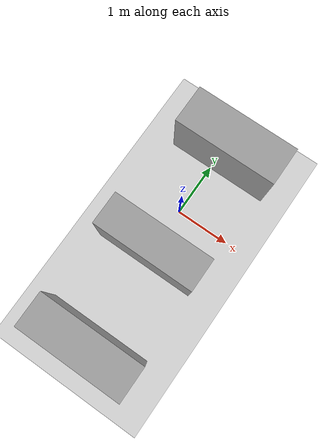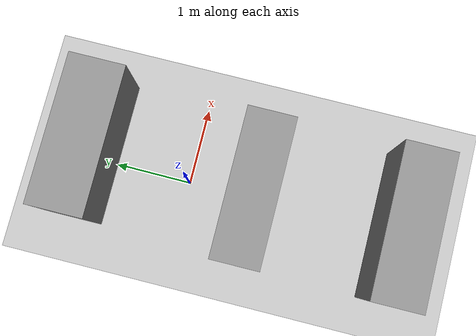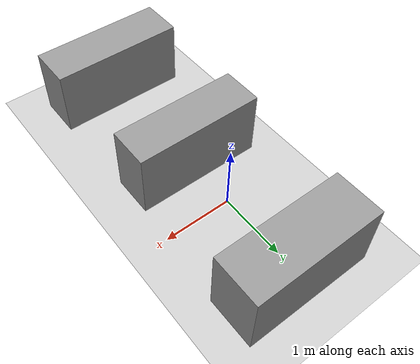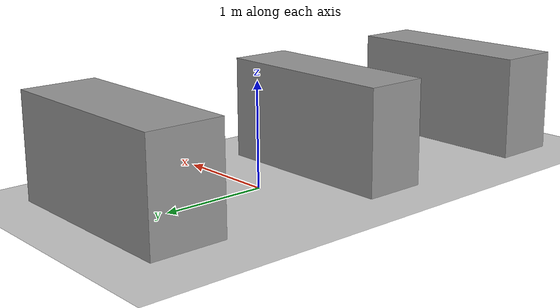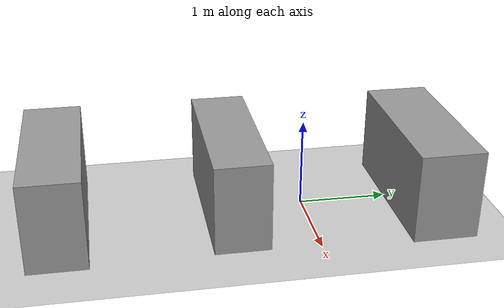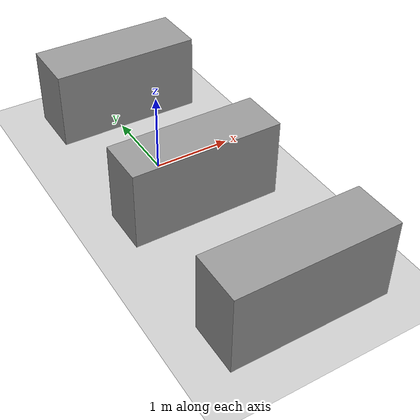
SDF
<sdf version="1.6">
 <world name="default">
  <light name="sun" type="directional">
   <pose>0 0 10 0 -0 0</pose>
   <diffuse>0.8 0.8 0.8 1</diffuse>
   <specular>0.2 0.2 0.2 1</specular>
   <attenuation>
    <range>1000</range>
    <constant>0.9</constant>
    <linear>0.01</linear>
    <quadratic>0.001</quadratic>
   </attenuation>
   <direction>-0.5 0.1 -0.9</direction>
  </light>
  <model name="ground_plane">
   <static>1</static>
   <link name="link">
    <collision name="collision">
     <geometry><plane><normal>0 0 1</normal><size>100 100</size></plane></geometry>
     <surface><friction><ode><mu>100</mu><mu2>50</mu2></ode></friction></surface>
    </collision>
    <visual name="visual">
     <cast_shadows>0</cast_shadows>
     <geometry><plane><normal>0 0 1</normal><size>100 100</size></plane></geometry>
     <material>
      <script><uri>file://media/materials/scripts/gazebo.material</uri><name>Gazebo/Grey</name></script>
     </material>
    </visual>
   </link>
  </model>
  <gravity>0 0 -9.8</gravity>
  <magnetic_field>6e-06 2.3e-05 -4.2e-05</magnetic_field>
  <atmosphere type="adiabatic"/>
  <physics name="default_physics" default="0" type="ode">
   <max_step_size>0.001</max_step_size>
   <real_time_factor>1</real_time_factor>
   <real_time_update_rate>1000</real_time_update_rate>
  </physics>
  <scene><ambient>0.4 0.4 0.4 1</ambient><background>0.7 0.7 0.7 1</background><shadows>1</shadows></scene>
  <spherical_coordinates>
   <surface_model>EARTH_WGS84</surface_model>
   <latitude_deg>0</latitude_deg>
   <longitude_deg>0</longitude_deg>
   <elevation>0</elevation>
   <heading_deg>0</heading_deg>
  </spherical_coordinates>
  <model name="unit_box">
   <static>1</static>
   <pose>0.050309 -2.76598 0.5 0 -0 1e-06</pose>
   <link name="link">
    <inertial>
     <mass>10</mass>
     <inertia>
      <ixx>0.166667</ixx>
      <ixy>0</ixy>
      <ixz>0</ixz>
      <iyy>0.166667</iyy>
      <iyz>0</iyz>
      <izz>0.166667</izz>
     </inertia>
    </inertial>
    <collision name="collision"><geometry><box><size>1.94084 0.643774 1</size></box></geometry></collision>
    <visual name="visual">
     <geometry><box><size>1.94084 0.643774 1</size></box></geometry>
     <material>
      <script><name>Gazebo/Grey</name><uri>file://media/materials/scripts/gazebo.material</uri></script>
     </material>
    </visual>
   </link>
  </model>
  <model name="unit_box_0">
   <static>1</static>
   <pose>0.132985 1.35164 0.5 0 -0 0</pose>
   <link name="link">
    <inertial>
     <mass>10</mass>
     <inertia>
      <ixx>0.166667</ixx>
      <ixy>0</ixy>
      <ixz>0</ixz>
      <iyy>0.166667</iyy>
      <iyz>0</iyz>
      <izz>0.166667</izz>
     </inertia>
    </inertial>
    <collision name="collision"><geometry><box><size>1.89639 0.714269 1</size></box></geometry></collision>
    <visual name="visual">
     <geometry><box><size>1.89639 0.714269 1</size></box></geometry>
     <material>
      <script><name>Gazebo/Grey</name><uri>file://media/materials/scripts/gazebo.material</uri></script>
     </material>
    </visual>
   </link>
  </model>
  <model name="unit_box_1">
   <static>1</static>
   <pose>0.031816 -0.841824 0.499991 0 9e-06 -1e-06</pose>
   <link name="link">
    <inertial>
     <mass>10</mass>
     <inertia>
      <ixx>0.166667</ixx>
      <ixy>0</ixy>
      <ixz>0</ixz>
      <iyy>0.166667</iyy>
      <iyz>0</iyz>
      <izz>0.166667</izz>
     </inertia>
    </inertial>
    <collision name="collision"><geometry><box><size>1.87376 0.611348 1</size></box></geometry></collision>
    <visual name="visual">
     <geometry><box><size>1.87376 0.611348 1</size></box></geometry>
     <material>
      <script><name>Gazebo/Grey</name><uri>file://media/materials/scripts/gazebo.material</uri></script>
     </material>
    </visual>
   </link>
  </model>
  <plugin name="gazebo_connection_plugin" filename="libgazebo_connection_plugin.so"/>
 </world>
</sdf>
